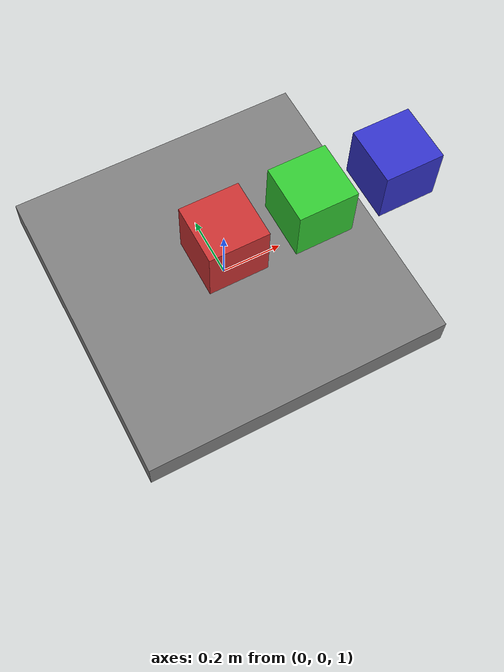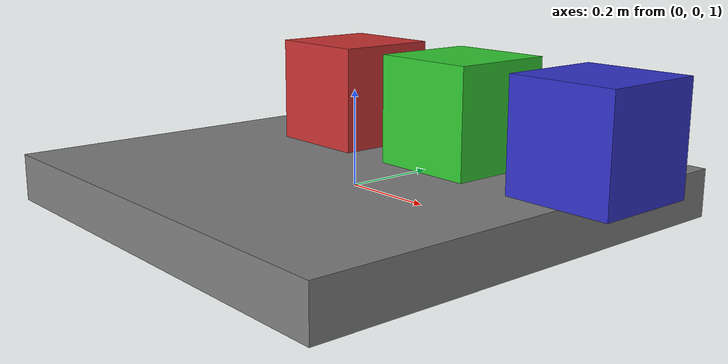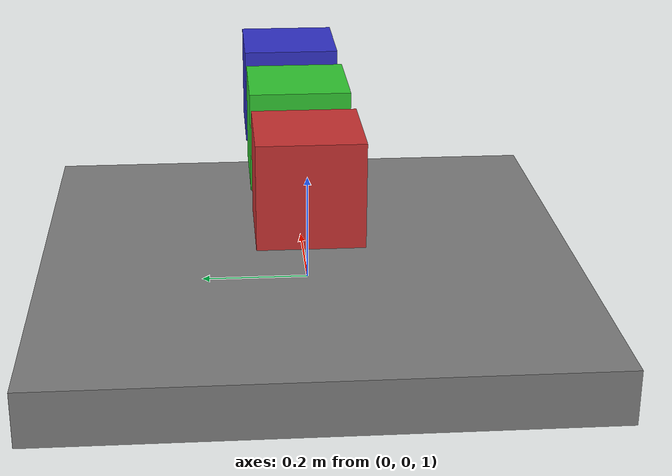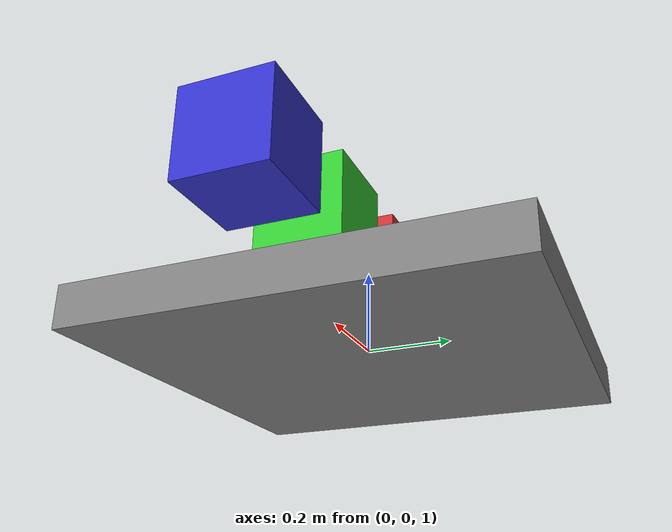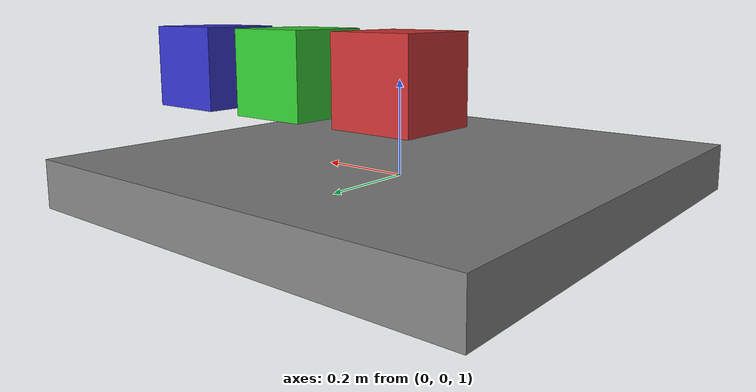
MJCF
<mujoco model="actuator_edge_cases">
  <worldbody>
    <body name="base" pos="0 0 1">
      <geom name="base_geom" type="box" size="0.5 0.5 0.05" rgba="0.5 0.5 0.5 1"/>

      <!-- Body with unnamed actuator -->
      <body name="box1" pos="0 0 0.2">
        <geom name="box1_geom" type="box" size="0.1 0.1 0.1" rgba="0.8 0.2 0.2 1"/>
        <joint name="box1_joint" type="slide" axis="0 0 1"/>
      </body>

      <!-- Bodies with duplicate actuator names -->
      <body name="box2" pos="0.3 0 0.2">
        <geom name="box2_geom" type="box" size="0.1 0.1 0.1" rgba="0.2 0.8 0.2 1"/>
        <joint name="box2_joint" type="slide" axis="0 0 1"/>
      </body>

      <body name="box3" pos="0.6 0 0.2">
        <geom name="box3_geom" type="box" size="0.1 0.1 0.1" rgba="0.2 0.2 0.8 1"/>
        <joint name="box3_joint" type="slide" axis="0 0 1"/>
        <site name="valid_site" pos="0 0 0"/>
      </body>
    </body>
  </worldbody>

    <actuator>
    <!-- Unnamed actuator - will use default naming -->
    <motor joint="box1_joint"/>

    <!-- Illegal name to test display name -->
    <motor name="illegal name" joint="box2_joint"/>

    <!-- Actuators with missing targets to trigger warnings -->
    <general name="missing_target" body="nonexistent_body" gear="1 0 0 0 0 0"/>
    <general name="missing_refsite" site="valid_site" refsite="nonexistent_site" gear="1 0 0 0 0 0"/>
    <general name="missing_slidersite" cranksite="valid_site" slidersite="nonexistent_site" gear="1 0 0 0 0 0"/>

    <!-- Test all dyntype enum values -->
    <general name="none_dyn" joint="box1_joint" dyntype="none" gear="1 0 0 0 0 0"/>
    <general name="integrator_dyn" joint="box1_joint" dyntype="integrator" gear="1 0 0 0 0 0"/>
    <general name="filter_dyn" joint="box1_joint" dyntype="filter" gear="1 0 0 0 0 0"/>
    <general name="filterexact_dyn" joint="box1_joint" dyntype="filterexact" gear="1 0 0 0 0 0"/>
    <general name="muscle_dyn" joint="box2_joint" dyntype="muscle" gear="1 0 0 0 0 0"/>
    <general name="user_dyn" joint="box3_joint" dyntype="user" gear="1 0 0 0 0 0"/>

    <!-- Test all gaintype enum values -->
    <general name="fixed_gain" joint="box1_joint" gaintype="fixed" gear="1 0 0 0 0 0"/>
    <general name="affine_gain" joint="box1_joint" gaintype="affine" gear="1 0 0 0 0 0"/>
    <general name="muscle_gain" joint="box1_joint" gaintype="muscle" gear="1 0 0 0 0 0"/>
    <general name="user_gain" joint="box2_joint" gaintype="user" gear="1 0 0 0 0 0"/>

    <!-- Test all biastype enum values -->
    <general name="none_bias" joint="box1_joint" biastype="none" gear="1 0 0 0 0 0"/>
    <general name="affine_bias" joint="box1_joint" biastype="affine" gear="1 0 0 0 0 0"/>
    <general name="muscle_bias" joint="box1_joint" biastype="muscle" gear="1 0 0 0 0 0"/>
    <general name="user_bias" joint="box2_joint" biastype="user" gear="1 0 0 0 0 0"/>
  </actuator>
</mujoco>
